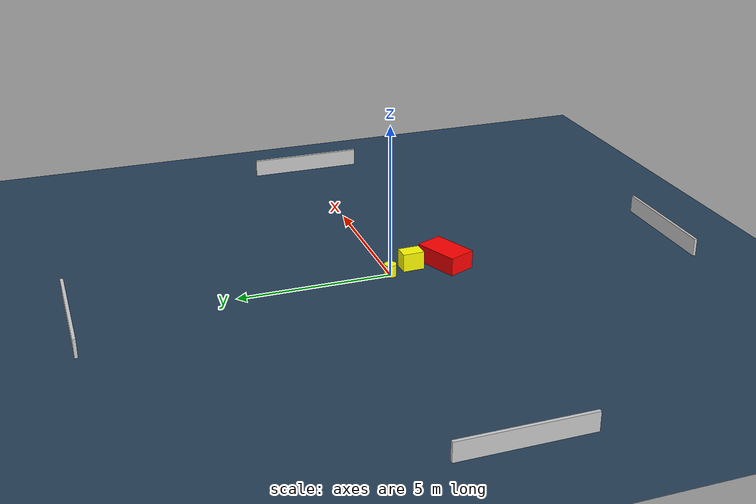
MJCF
<?xml version="1.0" ?>
<mujoco model="generated_environment">
  <option timestep="0.01" integrator="RK4" cone="elliptic"/>
  <default>
    <geom density="1"/>
  </default>
  <asset>
    <texture builtin="gradient" height="3072" name="skybox" rgb1="0.3 0.5 0.7" rgb2="0 0 0" type="skybox" width="512"/>
    <texture builtin="checker" height="300" name="groundplane" rgb1="0.2 0.3 0.4" rgb2="0.1 0.2 0.3" type="2d" width="300"/>
    <material name="groundplane" reflectance="0.2" texrepeat="5 5" texture="groundplane"/>
  </asset>
  <worldbody>
    <light dir="0 0 -1" directional="true" pos="0 0 1.5"/>
    <geom condim="3" friction="0.5 0.005 0.001" material="groundplane" name="floor" pos="0 0 0" size="0 0 0.05" type="plane"/>
    <body name="walls">
      <geom name="wall_1" condim="4" pos="-10.0 0.0 0.3" rgba="0.800000011920929 0.800000011920929 0.800000011920929 1.0" size="0.05 2.0 0.3" type="box"/>
      <geom name="wall_2" condim="4" pos="10.0 0.0 0.3" rgba="0.800000011920929 0.800000011920929 0.800000011920929 1.0" size="0.05 2.0 0.3" type="box"/>
      <geom name="wall_3" condim="4" pos="0.0 -10.0 0.3" rgba="0.800000011920929 0.800000011920929 0.800000011920929 1.0" size="2.0 0.05 0.3" type="box"/>
      <geom name="wall_4" condim="4" pos="0.0 10.0 0.3" rgba="0.800000011920929 0.800000011920929 0.800000011920929 1.0" size="2.0 0.05 0.3" type="box"/>
    </body>
    <body name="robot">
      <joint name="joint_x" type="slide" pos="0 0 0" axis="1 0 0"/>
      <joint name="joint_y" type="slide" pos="0 0 0" axis="0 1 0"/>
      <geom name="robot" type="cylinder" pos="0.0 0.0 0.2" size="0.2 0.2 0.0" mass="5.0" friction="1.0 0.005 0.0001" condim="4" rgba="1.0 1.0 0.0 1.0"/>
    </body>
    <body name="obstacle_1_movable">
      <geom name="obstacle_1_movable" condim="4" pos="0.3237273905450944 -0.8251619765842438 0.3" euler="0 0 91.7972469390059" friction="0.0 0.005 0.001" rgba="1.0 1.0 0.0 1.0" size="0.3549474134489574 0.24982844544065036 0.3" type="box" mass="0.1"/>
      <joint type="free"/>
    </body>
    <body name="obstacle_2_static">
      <geom name="obstacle_2_static" condim="4" pos="0.17244503273177356 -1.9594129586297868 0.3" euler="0 0 293.29861699344" friction="0.0 0.005 0.001" rgba="1.0 0.0 0.0 1.0" size="0.46672428110331515 0.774019430770069 0.3" type="box"/>
    </body>
  </worldbody>
  <actuator>
    <motor name="actuator_x" joint="joint_x" gear="1" ctrlrange="-1 1"/>
    <motor name="actuator_y" joint="joint_y" gear="1" ctrlrange="-1 1"/>
  </actuator>
</mujoco>
